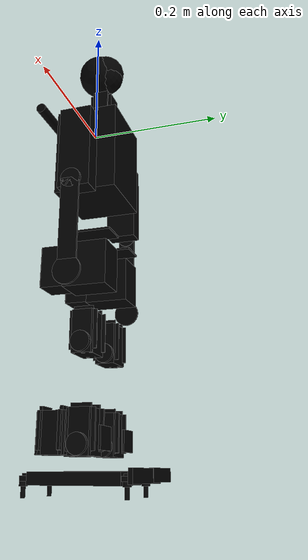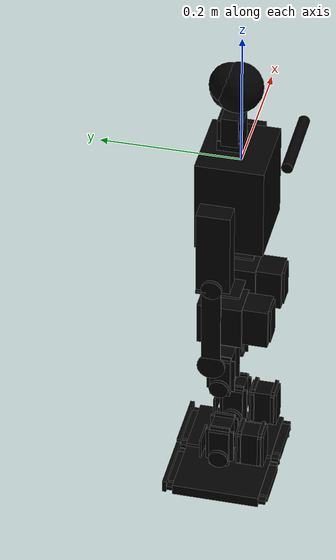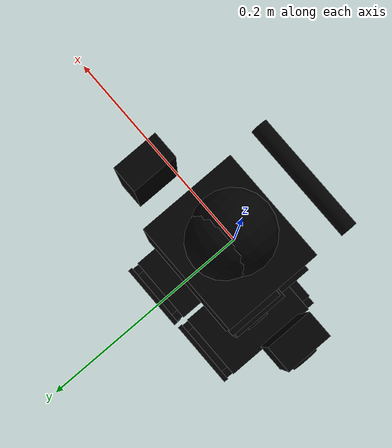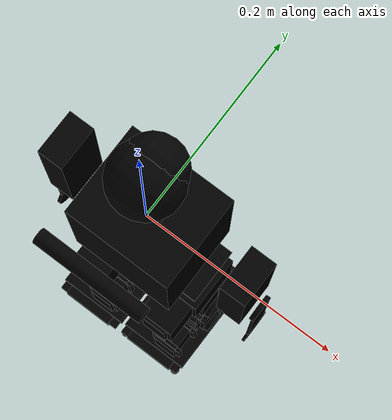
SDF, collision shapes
<sdf version='1.11'>
  <model name='human'>
    <link name='chest'>
      <inertial>
        <pose>-0.00019902280337225921 -0.00203130302736155 -0.037819464503959899 0 0 0</pose>
        <mass>1.01725518354323</mass>
        <inertia>
          <ixx>0.0031801711506863851</ixx>
          <ixy>2.3215723779200341e-07</ixy>
          <ixz>3.1962318710858549e-06</ixz>
          <iyy>0.003314632515231372</iyy>
          <iyz>-0.00032228233031600731</iyz>
          <izz>0.00064202333554569304</izz>
        </inertia>
      </inertial>
      <collision name='chest_box_collision'>
        <pose>0 0.0050000000000000001 -0.050000000000000003 0 0 0</pose>
        <geometry>
          <box>
            <size>0.1125 0.097500000000000003 0.14000000000000001</size>
          </box>
        </geometry>
      </collision>
      <collision name='chest_cylinder_collision_1'>
        <pose>0 -0.075699000000000002 0.037999999999999999 0 1.5707963267948966 0</pose>
        <geometry>
          <cylinder>
            <length>0.11459999999999999</length>
            <radius>0.0080000000000000002</radius>
          </cylinder>
        </geometry>
      </collision>
      <collision name='chest_fixed_joint_lump__neck_collision1_collision_2'>
        <pose>0 0.0134 0.051150000000000043 0 0 0</pose>
        <geometry>
          <box>
            <size>0.030200000000000001 0.0356 0.039600000000000003</size>
          </box>
        </geometry>
      </collision>
      <collision name='chest_fixed_joint_lump__neck_collision2_collision_3'>
        <pose>0 0.013427 0.053940000000000043 0 0 0</pose>
        <geometry>
          <box>
            <size>0.035499999999999997 0.024386399999999999 0.045179499999999997</size>
          </box>
        </geometry>
      </collision>
      <collision name='chest_fixed_joint_lump__neck_collision3_collision_4'>
        <pose>0 0.0134 0.030250000000000051 0 0 0</pose>
        <geometry>
          <box>
            <size>0.034200000000000001 0.035499999999999997 0.014999999999999999</size>
          </box>
        </geometry>
      </collision>
      <collision name='chest_fixed_joint_lump__head_collision1_collision_5'>
        <pose>-0.0002499984691190886 0.015306468801537991 0.1235513065115186 1.5707959999999983 -1.4912129999999999 -1.5707959999999981</pose>
        <geometry>
          <sphere>
            <radius>0.030539699999999999</radius>
          </sphere>
        </geometry>
      </collision>
      <collision name='chest_fixed_joint_lump__head_collision2_collision_6'>
        <pose>-0.00024999864647085382 0.016264169320519401 0.11676295739586889 1.5707959999999983 -1.4912129999999999 -1.5707959999999981</pose>
        <geometry>
          <sphere>
            <radius>0.028408599999999999</radius>
          </sphere>
        </geometry>
      </collision>
      <collision name='chest_fixed_joint_lump__head_collision3_collision_7'>
        <pose>-0.0002499985442047277 0.0049332325522251138 0.1202481863629407 1.5707959999999983 -1.4912129999999999 -1.5707959999999981</pose>
        <geometry>
          <sphere>
            <radius>0.0349883</radius>
          </sphere>
        </geometry>
      </collision>
      <visual name='chest_visual_visual'>
        <pose>0 0 0 -1.5707963270000003 0 0</pose>
        <geometry>
          <mesh>
            <scale>1 1 1</scale>
            <uri>meshes/chest.STL</uri>
          </mesh>
        </geometry>
      </visual>
      <visual name='chest_fixed_joint_lump__neck_visual_visual_1'>
        <pose>0 0.0134 0.02075000000000005 -1.5707963270000003 0 0</pose>
        <geometry>
          <mesh>
            <scale>1 1 1</scale>
            <uri>meshes/neck.STL</uri>
          </mesh>
        </geometry>
        <material>
          <diffuse>0 0 0 1</diffuse>
          <ambient>0 0 0 1</ambient>
        </material>
      </visual>
      <visual name='chest_fixed_joint_lump__head_visual_visual_2'>
        <pose>-0.018749999999999999 0.0134 0.064550000000000052 -3.270000019771135e-07 -1.4912130000000026 -1.5707959999999985</pose>
        <geometry>
          <mesh>
            <scale>1 1 1</scale>
            <uri>meshes/head.STL</uri>
          </mesh>
        </geometry>
        <material>
          <diffuse>0 0 0 1</diffuse>
          <ambient>0 0 0 1</ambient>
        </material>
      </visual>
    </link>
    <joint name='left_arm_upper' type='revolute'>
      <pose relative_to='chest'>-0.074700000000000003 0.0134 0 -3.1415923071795868 1.5707960010076636 8.1079225973594387e-17</pose>
      <parent>chest</parent>
      <child>left_arm</child>
      <axis>
        <xyz>0 0 -1</xyz>
        <limit>
          <lower>-3.1415926540000001</lower>
          <upper>3.1415926540000001</upper>
          <effort>7</effort>
          <velocity>20</velocity>
        </limit>
        <dynamics>
          <damping>0.036200000000000003</damping>
          <friction>0.0077999999999999996</friction>
          <spring_reference>0</spring_reference>
          <spring_stiffness>0</spring_stiffness>
        </dynamics>
      </axis>
    </joint>
    <link name='left_arm'>
      <pose relative_to='left_arm_upper'>0 0 0 0 0 0</pose>
      <inertial>
        <pose>0.080763000000000001 0.0018860000000000001 0.029108999999999999 0 0 0</pose>
        <mass>0.140880482426088</mass>
        <inertia>
          <ixx>2.0746461598375701e-05</ixx>
          <ixy>-2.8659021101734599e-11</ixy>
          <ixz>-6.7417528894394298e-06</ixz>
          <iyy>0.00012310039515784201</iyy>
          <iyz>-1.5929639449771301e-07</iyz>
          <izz>0.00011999284945507099</izz>
        </inertia>
      </inertial>
      <collision name='left_arm_collision_collision'>
        <pose>0.080500000000000002 0 0.029000000000000001 0 0 0</pose>
        <geometry>
          <box>
            <size>0.12709999999999999 0.048000000000000001 0.028000000000000001</size>
          </box>
        </geometry>
      </collision>
      <visual name='left_arm_visual_visual'>
        <pose>0 0 0 -1.5707963270000003 0 0</pose>
        <geometry>
          <mesh>
            <scale>1 1 1</scale>
            <uri>meshes/left_arm.STL</uri>
          </mesh>
        </geometry>
        <material>
          <diffuse>0 0 0 1</diffuse>
          <ambient>0 0 0 1</ambient>
        </material>
      </visual>
    </link>
    <joint name='left_arm_lower' type='revolute'>
      <pose relative_to='left_arm'>0.13600000000000001 0 0.049549999999999997 0 0 0</pose>
      <parent>left_arm</parent>
      <child>left_hand</child>
      <axis>
        <xyz>0 0 -1</xyz>
        <limit>
          <lower>-3.1415926540000001</lower>
          <upper>3.1415926540000001</upper>
          <effort>3</effort>
          <velocity>20</velocity>
        </limit>
        <dynamics>
          <damping>0.036200000000000003</damping>
          <friction>0.0077999999999999996</friction>
          <spring_reference>0</spring_reference>
          <spring_stiffness>0</spring_stiffness>
        </dynamics>
      </axis>
    </joint>
    <link name='left_hand'>
      <pose relative_to='left_arm_lower'>0 0 0 0 0 0</pose>
      <inertial>
        <pose>0.063648999999999997 0 0.0013190000000000001 0 0 0</pose>
        <mass>0.024044269196268502</mass>
        <inertia>
          <ixx>1.94691318232501e-06</ixx>
          <ixy>1.9798400242031498e-12</ixy>
          <ixz>1.70538796340321e-12</ixz>
          <iyy>4.9981652993954002e-05</iyy>
          <iyz>7.0639482370012499e-13</iyz>
          <izz>5.1889171468805399e-05</izz>
        </inertia>
      </inertial>
      <collision name='left_hand_end_collision_collision'>
        <pose>0.13500000000000001 0 0.0015 0 0 0</pose>
        <geometry>
          <cylinder>
            <length>0.0030000000000000001</length>
            <radius>0.02</radius>
          </cylinder>
        </geometry>
      </collision>
      <collision name='left_hand_base_collision_collision_1'>
        <pose>0 0 0.00050000000000000001 0 0 0</pose>
        <geometry>
          <cylinder>
            <length>0.0050000000000000001</length>
            <radius>0.0146</radius>
          </cylinder>
        </geometry>
      </collision>
      <collision name='left_hand_connection_collision_collision_2'>
        <pose>0.060122000000000002 0 0.0015 0 0 0</pose>
        <geometry>
          <box>
            <size>0.120244 0.027 0.0030000000000000001</size>
          </box>
        </geometry>
      </collision>
      <visual name='left_hand_visual_visual'>
        <pose>0 0 0 -1.5707963270000003 0 0</pose>
        <geometry>
          <mesh>
            <scale>1 1 1</scale>
            <uri>meshes/left_hand.STL</uri>
          </mesh>
        </geometry>
        <material>
          <diffuse>0 0 0 1</diffuse>
          <ambient>0 0 0 1</ambient>
        </material>
      </visual>
    </link>
    <joint name='left_hip_yaw' type='revolute'>
      <pose relative_to='chest'>-0.044999999999999998 0.0133599999999985 -0.16994999999999999 0 0 0</pose>
      <parent>chest</parent>
      <child>left_leg_yaw</child>
      <axis>
        <xyz>0 0 -1</xyz>
        <limit>
          <lower>-3.1415926540000001</lower>
          <upper>3.1415926540000001</upper>
          <effort>7</effort>
          <velocity>20</velocity>
        </limit>
        <dynamics>
          <damping>0.036200000000000003</damping>
          <friction>0.0077999999999999996</friction>
          <spring_reference>0</spring_reference>
          <spring_stiffness>0</spring_stiffness>
        </dynamics>
      </axis>
    </joint>
    <link name='left_leg_yaw'>
      <pose relative_to='left_hip_yaw'>0 0 0 0 0 0</pose>
      <inertial>
        <pose>0 0.0032850000000000002 -0.029821 0 0 0</pose>
        <mass>0.058662024462932297</mass>
        <inertia>
          <ixx>3.0496686582707501e-05</ixx>
          <ixy>-8.4677743033588304e-14</ixy>
          <ixz>8.5574380306308406e-14</ixz>
          <iyy>1.16928645977672e-05</iyy>
          <iyz>-9.4199503165967801e-08</iyz>
          <izz>3.04113434807083e-05</izz>
        </inertia>
      </inertial>
      <collision name='left_leg_yaw_collision_collision'>
        <pose>0 0.0051500000000000001 -0.022499999999999999 0 0 0</pose>
        <geometry>
          <box>
            <size>0.041000000000000002 0.063700000000000007 0.0030000000000000001</size>
          </box>
        </geometry>
      </collision>
      <visual name='left_leg_yaw_visual_visual'>
        <pose>0 0 0 -1.5707963270000003 0 0</pose>
        <geometry>
          <mesh>
            <scale>1 1 1</scale>
            <uri>meshes/left_leg_yaw.STL</uri>
          </mesh>
        </geometry>
        <material>
          <diffuse>0 0 0 1</diffuse>
          <ambient>0 0 0 1</ambient>
        </material>
      </visual>
    </link>
    <joint name='left_hip_roll' type='revolute'>
      <pose relative_to='left_leg_yaw'>0 -0.0292 -0.055 0 0 0</pose>
      <parent>left_leg_yaw</parent>
      <child>left_leg_roll</child>
      <axis>
        <xyz>0 1 0</xyz>
        <limit>
          <lower>-3.1415926540000001</lower>
          <upper>3.1415926540000001</upper>
          <effort>7</effort>
          <velocity>20</velocity>
        </limit>
        <dynamics>
          <damping>0.036200000000000003</damping>
          <friction>0.0077999999999999996</friction>
          <spring_reference>0</spring_reference>
          <spring_stiffness>0</spring_stiffness>
        </dynamics>
      </axis>
    </joint>
    <link name='left_leg_roll'>
      <pose relative_to='left_hip_roll'>0 0 0 0 0 0</pose>
      <inertial>
        <pose>2.5000000000000001e-05 0.010978 -0.014083999999999999 0 0 0</pose>
        <mass>0.17675216665704899</mass>
        <inertia>
          <ixx>6.1790335519862398e-05</ixx>
          <ixy>-9.41308133856575e-10</ixy>
          <ixz>-2.1169089800936899e-07</ixz>
          <iyy>6.5889939337192494e-05</iyy>
          <iyz>-2.14817110544029e-07</iyz>
          <izz>3.9028076120466002e-05</izz>
        </inertia>
      </inertial>
      <collision name='left_leg_roll_upper_collision_collision'>
        <pose>0 0.03065 -0.018117000000000001 0 0 0</pose>
        <geometry>
          <box>
            <size>0.050200000000000002 0.064299999999999996 0.065255199999999999</size>
          </box>
        </geometry>
      </collision>
      <collision name='left_leg_roll_lower_collision_collision_1'>
        <pose>0 -0.039750000000000001 -0.014838 0 0 0</pose>
        <geometry>
          <box>
            <size>0.028996999999999998 0.0035000000000000001 0.055392799999999999</size>
          </box>
        </geometry>
      </collision>
      <collision name='left_leg_roll_down_collision_collision_2'>
        <pose>1.4e-05 -0.019 -0.01755 0 0 0</pose>
        <geometry>
          <box>
            <size>0.040388399999999998 0.037999999999999999 0.061100599999999998</size>
          </box>
        </geometry>
      </collision>
      <visual name='left_leg_roll_visual_visual'>
        <pose>0 0 0 -1.5707963270000003 0 0</pose>
        <geometry>
          <mesh>
            <scale>1 1 1</scale>
            <uri>meshes/left_leg_roll.STL</uri>
          </mesh>
        </geometry>
        <material>
          <diffuse>0 0 0 1</diffuse>
          <ambient>0 0 0 1</ambient>
        </material>
      </visual>
    </link>
    <joint name='left_hip_pitch' type='revolute'>
      <pose relative_to='left_leg_roll'>-0.028999694999999999 0.0292 0.000132953 -0.34059799999999818 1.5659320000000612 2.8009909999999976</pose>
      <parent>left_leg_roll</parent>
      <child>left_leg_pitch</child>
      <axis>
        <xyz>0 0 -1</xyz>
        <limit>
          <lower>-3.1415926540000001</lower>
          <upper>3.1415926540000001</upper>
          <effort>10</effort>
          <velocity>20</velocity>
        </limit>
        <dynamics>
          <damping>0.041399999999999999</damping>
          <friction>0.1179</friction>
          <spring_reference>0</spring_reference>
          <spring_stiffness>0</spring_stiffness>
        </dynamics>
      </axis>
    </joint>
    <link name='left_leg_pitch'>
      <pose relative_to='left_hip_pitch'>0 0 0 0 0 0</pose>
      <inertial>
        <pose>0.037596999999999998 0 -0.027982 0 0 0</pose>
        <mass>0.027887725075667901</mass>
        <inertia>
          <ixx>2.41537468742227e-06</ixx>
          <ixy>3.2274965794789498e-14</ixy>
          <ixz>4.7964487075471796e-12</ixz>
          <iyy>1.14633756275734e-05</iyy>
          <iyz>7.7934947477887403e-15</iyz>
          <izz>1.3716039319153201e-05</izz>
        </inertia>
      </inertial>
      <collision name='left_leg_pitch_big_collision_collision'>
        <pose>0.11475 0 -0.028992 0 0 0</pose>
        <geometry>
          <box>
            <size>0.059499999999999997 0.029000000000000001 0.045984799999999999</size>
          </box>
        </geometry>
      </collision>
      <collision name='left_leg_pitch_p_one0_collision_collision_1'>
        <pose>0.11194999999999999 0 -0.012749999999999999 0 0 0</pose>
        <geometry>
          <box>
            <size>0.065100000000000005 0.029000000000000001 0.0015</size>
          </box>
        </geometry>
      </collision>
      <collision name='left_leg_pitch_p_one1_collision_collision_2'>
        <pose>0.11194999999999999 0 -0.012749999999999999 0 0 0</pose>
        <geometry>
          <box>
            <size>0.053900000000000003 0.0402 0.0015</size>
          </box>
        </geometry>
      </collision>
      <collision name='left_leg_pitch_p_two0_collision_collision_3'>
        <pose>0.11194999999999999 0 -0.045249999999999999 0 0 0</pose>
        <geometry>
          <box>
            <size>0.065100000000000005 0.029000000000000001 0.0015</size>
          </box>
        </geometry>
      </collision>
      <collision name='left_leg_pitch_p_two1_collision_collision_4'>
        <pose>0.11194999999999999 0 -0.045249999999999999 0 0 0</pose>
        <geometry>
          <box>
            <size>0.053900000000000003 0.0402 0.0015</size>
          </box>
        </geometry>
      </collision>
      <visual name='left_leg_pitch_visual_visual'>
        <pose>0 0 0 -1.5707963270000003 0 0</pose>
        <geometry>
          <mesh>
            <scale>1 1 1</scale>
            <uri>meshes/left_leg_pitch.STL</uri>
          </mesh>
        </geometry>
        <material>
          <diffuse>0 0 0 1</diffuse>
          <ambient>0 0 0 1</ambient>
        </material>
      </visual>
    </link>
    <joint name='left_knee' type='revolute'>
      <pose relative_to='left_leg_pitch'>0.13002367748412599 -0.000211229839968 -0.0049039448874059997 0 0 0</pose>
      <parent>left_leg_pitch</parent>
      <child>left_leg_knee</child>
      <axis>
        <xyz>0 0 1</xyz>
        <limit>
          <lower>-3.1415926540000001</lower>
          <upper>3.1415926540000001</upper>
          <effort>10</effort>
          <velocity>20</velocity>
        </limit>
        <dynamics>
          <damping>0.034700000000000002</damping>
          <friction>0.0843</friction>
          <spring_reference>0</spring_reference>
          <spring_stiffness>0</spring_stiffness>
        </dynamics>
      </axis>
    </joint>
    <link name='left_leg_knee'>
      <pose relative_to='left_knee'>0 0 0 0 0 0</pose>
      <inertial>
        <pose>0.084360000000000004 0 -0.024128 0 0 0</pose>
        <mass>0.0328192125267944</mass>
        <inertia>
          <ixx>1.9489049933254499e-06</ixx>
          <ixy>2.35500388345378e-20</ixy>
          <ixz>-4.79645500496334e-12</ixz>
          <iyy>4.3073341622455502e-05</iyy>
          <iyz>9.3300803217153103e-22</iyz>
          <izz>4.4968042537653101e-05</izz>
        </inertia>
      </inertial>
      <collision name='left_leg_knee_collision0_collision'>
        <pose>0 0 -0.049750000000000003 0 0 0</pose>
        <geometry>
          <cylinder>
            <length>0.0054999999999999997</length>
            <radius>0.014</radius>
          </cylinder>
        </geometry>
      </collision>
      <collision name='left_leg_knee_collision1_collision_1'>
        <pose>0 0 0.0030000000000000001 0 0 0</pose>
        <geometry>
          <cylinder>
            <length>0.0054999999999999997</length>
            <radius>0.014</radius>
          </cylinder>
        </geometry>
      </collision>
      <collision name='left_leg_knee_collision2_collision_2'>
        <pose>0.13036 0 -0.049750000000000003 0 0 0</pose>
        <geometry>
          <cylinder>
            <length>0.0054999999999999997</length>
            <radius>0.014</radius>
          </cylinder>
        </geometry>
      </collision>
      <collision name='left_leg_knee_collision3_collision_3'>
        <pose>0.13036 0 0.0030000000000000001 0 0 0</pose>
        <geometry>
          <cylinder>
            <length>0.0054999999999999997</length>
            <radius>0.014</radius>
          </cylinder>
        </geometry>
      </collision>
      <visual name='left_leg_knee_visual_visual'>
        <pose>0 0 0 -1.5707963270000003 0 0</pose>
        <geometry>
          <mesh>
            <scale>1 1 1</scale>
            <uri>meshes/left_leg_knee.STL</uri>
          </mesh>
        </geometry>
        <material>
          <diffuse>0 0 0 1</diffuse>
          <ambient>0 0 0 1</ambient>
        </material>
      </visual>
    </link>
    <joint name='left_ankle_pitch' type='revolute'>
      <pose relative_to='left_leg_knee'>0.12999846217997499 -0.000211229839968 0.00059599731123800002 -0.17622265358979133 1.5614826535898316 2.9669936535897934</pose>
      <parent>left_leg_knee</parent>
      <child>left_leg_ankle</child>
      <axis>
        <xyz>1 0 0</xyz>
        <limit>
          <lower>-3.1415926540000001</lower>
          <upper>3.1415926540000001</upper>
          <effort>10</effort>
          <velocity>20</velocity>
        </limit>
        <dynamics>
          <damping>0.036200000000000003</damping>
          <friction>0.0077999999999999996</friction>
          <spring_reference>0</spring_reference>
          <spring_stiffness>0</spring_stiffness>
        </dynamics>
      </axis>
    </joint>
    <link name='left_leg_ankle'>
      <pose relative_to='left_ankle_pitch'>0 0 0 0 0 0</pose>
      <inertial>
        <pose>0.023591000000000001 -0.016018000000000001 0.014279999999999999 0 0 0</pose>
        <mass>0.173948205448793</mass>
        <inertia>
          <ixx>6.1525563546113303e-05</ixx>
          <ixy>-4.3529887410332497e-11</ixy>
          <ixz>1.07316479776985e-07</ixz>
          <iyy>6.5767469559665899e-05</iyy>
          <iyz>-1.9005632960375801e-07</iyz>
          <izz>3.8828440030109099e-05</izz>
        </inertia>
      </inertial>
      <collision name='left_leg_ankle_small_collision_collision'>
        <pose>0.023508000000000001 -0.043499999999999997 0.014751999999999999 0 0 0</pose>
        <geometry>
          <box>
            <size>0.028984800000000002 0.041000000000000002 0.055496200000000002</size>
          </box>
        </geometry>
      </collision>
      <collision name='left_leg_ankle_small11_collision_collision_1'>
        <pose>0.0235 -0.058250000000000003 0.01755 0 0 0</pose>
        <geometry>
          <box>
            <size>0.029000000000000001 0.0044999999999999997 0.061100000000000002</size>
          </box>
        </geometry>
      </collision>
      <collision name='left_leg_ankle_small12_collision_collision_2'>
        <pose>0.0235 -0.058250000000000003 0.01755 0 0 0</pose>
        <geometry>
          <box>
            <size>0.0402 0.0044999999999999997 0.0499</size>
          </box>
        </geometry>
      </collision>
      <collision name='left_leg_ankle_small21_collision_collision_3'>
        <pose>0.0235 -0.028739000000000001 0.01755 0 0 0</pose>
        <geometry>
          <box>
            <size>0.029000000000000001 0.0044999999999999997 0.061100000000000002</size>
          </box>
        </geometry>
      </collision>
      <collision name='left_leg_ankle_small22_collision_collision_4'>
        <pose>0.0235 -0.028739000000000001 0.01755 0 0 0</pose>
        <geometry>
          <box>
            <size>0.0402 0.0044999999999999997 0.0499</size>
          </box>
        </geometry>
      </collision>
      <collision name='left_leg_ankle_big_collision_collision_5'>
        <pose>0.0235 0 0.01525 0 0 0</pose>
        <geometry>
          <box>
            <size>0.045999999999999999 0.029000000000000001 0.059499999999999997</size>
          </box>
        </geometry>
      </collision>
      <collision name='left_leg_ankle_big11_collision_collision_6'>
        <pose>0.03875 0 0.01805 0 0 0</pose>
        <geometry>
          <box>
            <size>0.0035000000000000001 0.029000000000000001 0.065100000000000005</size>
          </box>
        </geometry>
      </collision>
      <collision name='left_leg_ankle_big12_collision_collision_7'>
        <pose>0.03875 0 0.01805 0 0 0</pose>
        <geometry>
          <box>
            <size>0.0035000000000000001 0.0402 0.053900000000000003</size>
          </box>
        </geometry>
      </collision>
      <collision name='left_leg_ankle_big21_collision_collision_8'>
        <pose>0.0080000000000000002 0 0.01805 0 0 0</pose>
        <geometry>
          <box>
            <size>0.0030000000000000001 0.029000000000000001 0.065100000000000005</size>
          </box>
        </geometry>
      </collision>
      <collision name='left_leg_ankle_big22_collision_collision_9'>
        <pose>0.0080000000000000002 0 0.01805 0 0 0</pose>
        <geometry>
          <box>
            <size>0.0035000000000000001 0.0402 0.053900000000000003</size>
          </box>
        </geometry>
      </collision>
      <collision name='left_leg_ankle_upper_collision_collision_10'>
        <pose>0.0235 0.02785 0.0070000000000000001 0 0 0</pose>
        <geometry>
          <box>
            <size>0.039 0.0027000000000000001 0.029999999999999999</size>
          </box>
        </geometry>
      </collision>
      <visual name='left_leg_ankle_visual_visual'>
        <pose>0 0 0 -1.5707963270000003 0 0</pose>
        <geometry>
          <mesh>
            <scale>1 1 1</scale>
            <uri>meshes/left_leg_ankle.STL</uri>
          </mesh>
        </geometry>
        <material>
          <diffuse>0 0 0 1</diffuse>
          <ambient>0 0 0 1</ambient>
        </material>
      </visual>
    </link>
    <joint name='left_ankle_roll' type='revolute'>
      <pose relative_to='left_leg_ankle'>0.023387000000000002 -0.069538000000000003 -0.000113445 0 0 0</pose>
      <parent>left_leg_ankle</parent>
      <child>left_foot</child>
      <axis>
        <xyz>0 -1 0</xyz>
        <limit>
          <lower>-3.1415926540000001</lower>
          <upper>3.1415926540000001</upper>
          <effort>7</effort>
          <velocity>20</velocity>
        </limit>
        <dynamics>
          <damping>0.036200000000000003</damping>
          <friction>0.0077999999999999996</friction>
          <spring_reference>0</spring_reference>
          <spring_stiffness>0</spring_stiffness>
        </dynamics>
      </axis>
    </joint>
    <link name='left_foot'>
      <pose relative_to='left_ankle_roll'>0 0 0 0 0 0</pose>
      <inertial>
        <pose>-0.012987 0.068288000000000001 -0.035867999999999997 0 0 0</pose>
        <mass>0.144176668751163</mass>
        <inertia>
          <ixx>0.00014149565462157499</ixx>
          <ixy>-1.52740202739877e-09</ixy>
          <ixz>1.9349728888557201e-07</ixz>
          <iyy>5.0645258641957197e-05</iyy>
          <iyz>-3.3396462913510601e-07</iyz>
          <izz>0.000183700741709755</izz>
        </inertia>
      </inertial>
      <collision name='left_foot_box1_collision_collision'>
        <pose>-0.016188000000000001 0.066000000000000003 -0.040925999999999997 0 0 0</pose>
        <geometry>
          <box>
            <size>0.089999999999999997 0.126 0.016</size>
          </box>
        </geometry>
      </collision>
      <collision name='left_foot_box2_collision_collision_1'>
        <pose>-0.016211 0.066022999999999998 -0.040925999999999997 0 0 0</pose>
        <geometry>
          <box>
            <size>0.065954399999999996 0.149954 0.012</size>
          </box>
        </geometry>
      </collision>
      <collision name='left_foot_box3_collision_collision_2'>
        <pose>-0.016188000000000001 0.066000000000000003 -0.040925999999999997 0 0 0</pose>
        <geometry>
          <box>
            <size>0.086999999999999994 0.14699999999999999 0.0060000000000000001</size>
          </box>
        </geometry>
      </collision>
      <collision name='left_foot_box4_collision_collision_3'>
        <pose>-0.016171999999999999 0.14108599999999999 -0.037588999999999997 0 0 0</pose>
        <geometry>
          <box>
            <size>0.089999999999999997 0.0058276400000000003 0.018674400000000001</size>
          </box>
        </geometry>
      </collision>
      <visual name='left_foot_visual_visual'>
        <pose>0 0 0 -1.5707963270000003 0 0</pose>
        <geometry>
          <mesh>
            <scale>1 1 1</scale>
            <uri>meshes/left_foot.STL</uri>
          </mesh>
        </geometry>
        <material>
          <diffuse>0 0 0 1</diffuse>
          <ambient>0 0 0 1</ambient>
        </material>
      </visual>
    </link>
    <joint name='right_arm_upper' type='revolute'>
      <pose relative_to='chest'>0.074700000000000003 0.0134 0 0 1.5707959999869179 0</pose>
      <parent>chest</parent>
      <child>right_arm</child>
      <axis>
        <xyz>0 0 1</xyz>
        <limit>
          <lower>-3.1415926540000001</lower>
          <upper>3.1415926540000001</upper>
          <effort>7</effort>
          <velocity>20</velocity>
        </limit>
        <dynamics>
          <damping>0.036200000000000003</damping>
          <friction>0.0077999999999999996</friction>
          <spring_reference>0</spring_reference>
          <spring_stiffness>0</spring_stiffness>
        </dynamics>
      </axis>
    </joint>
    <link name='right_arm'>
      <pose relative_to='right_arm_upper'>0 0 0 0 0 0</pose>
      <inertial>
        <pose>0.080811999999999995 -0.0018710000000000001 0.029107999999999998 0 0 0</pose>
        <mass>0.140880482426088</mass>
        <inertia>
          <ixx>2.0746461598375701e-05</ixx>
          <ixy>3.0340088781543498e-07</ixy>
          <ixz>-6.7417528894395102e-06</ixz>
          <iyy>0.00012310039515784201</iyy>
          <iyz>1.5929818113849301e-07</iyz>
          <izz>0.00011999284945507099</izz>
        </inertia>
      </inertial>
      <collision name='right_arm_collision_collision'>
        <pose>0.080500000000000002 0 0.029000000000000001 0 0 0</pose>
        <geometry>
          <box>
            <size>0.12709999999999999 0.048000000000000001 0.028000000000000001</size>
          </box>
        </geometry>
      </collision>
      <visual name='right_arm_visual_visual'>
        <pose>0 0 0 -1.5707963270000003 0 0</pose>
        <geometry>
          <mesh>
            <scale>1 1 1</scale>
            <uri>meshes/right_arm.STL</uri>
          </mesh>
        </geometry>
        <material>
          <diffuse>0 0 0 1</diffuse>
          <ambient>0 0 0 1</ambient>
        </material>
      </visual>
    </link>
    <joint name='right_arm_lower' type='revolute'>
      <pose relative_to='right_arm'>0.13600000000000001 0 0.052549999999999999 0 0 0</pose>
      <parent>right_arm</parent>
      <child>right_hand</child>
      <axis>
        <xyz>0 0 1</xyz>
        <limit>
          <lower>-3.1415926540000001</lower>
          <upper>3.1415926540000001</upper>
          <effort>3</effort>
          <velocity>20</velocity>
        </limit>
        <dynamics>
          <damping>0.036200000000000003</damping>
          <friction>0.0077999999999999996</friction>
          <spring_reference>0</spring_reference>
          <spring_stiffness>0</spring_stiffness>
        </dynamics>
      </axis>
    </joint>
    <link name='right_hand'>
      <pose relative_to='right_arm_lower'>0 0 0 0 0 0</pose>
      <inertial>
        <pose>0.063648999999999997 0 -0.001681 0 0 0</pose>
        <mass>0.024044269196268502</mass>
        <inertia>
          <ixx>1.94691318232501e-06</ixx>
          <ixy>-1.9798400205047599e-12</ixy>
          <ixz>1.70538796039851e-12</ixz>
          <iyy>4.9981652993954097e-05</iyy>
          <iyz>-7.0639482380154195e-13</iyz>
          <izz>5.1889171468805501e-05</izz>
        </inertia>
      </inertial>
      <collision name='right_hand_end_collision_collision'>
        <pose>0.13500000000000001 0 -0.0015 0 0 0</pose>
        <geometry>
          <cylinder>
            <length>0.0030000000000000001</length>
            <radius>0.02</radius>
          </cylinder>
        </geometry>
      </collision>
      <collision name='right_hand_base_collision_collision_1'>
        <pose>0 0 -0.0025000000000000001 0 0 0</pose>
        <geometry>
          <cylinder>
            <length>0.0050000000000000001</length>
            <radius>0.0146</radius>
          </cylinder>
        </geometry>
      </collision>
      <collision name='right_hand_connection_collision_collision_2'>
        <pose>0.060122000000000002 0 -0.0015 0 0 0</pose>
        <geometry>
          <box>
            <size>0.120244 0.027 0.0030000000000000001</size>
          </box>
        </geometry>
      </collision>
      <visual name='right_hand_visual_visual'>
        <pose>0 0 0 -1.5707963270000003 0 0</pose>
        <geometry>
          <mesh>
            <scale>1 1 1</scale>
            <uri>meshes/right_hand.STL</uri>
          </mesh>
        </geometry>
        <material>
          <diffuse>0 0 0 1</diffuse>
          <ambient>0 0 0 1</ambient>
        </material>
      </visual>
    </link>
    <joint name='right_hip_yaw' type='revolute'>
      <pose relative_to='chest'>0.044999999999999998 0.01336 -0.16994999999999999 0 0 0</pose>
      <parent>chest</parent>
      <child>right_leg_yaw</child>
      <axis>
        <xyz>0 0 -1</xyz>
        <limit>
          <lower>-3.1415926540000001</lower>
          <upper>3.1415926540000001</upper>
          <effort>7</effort>
          <velocity>20</velocity>
        </limit>
        <dynamics>
          <damping>0.036200000000000003</damping>
          <friction>0.0077999999999999996</friction>
          <spring_reference>0</spring_reference>
          <spring_stiffness>0</spring_stiffness>
        </dynamics>
      </axis>
    </joint>
    <link name='right_leg_yaw'>
      <pose relative_to='right_hip_yaw'>0 0 0 0 0 0</pose>
      <inertial>
        <pose>0 0.0032850000000000002 -0.029821 0 0 0</pose>
        <mass>0.0586620244629322</mass>
        <inertia>
          <ixx>3.0496686583123601e-05</ixx>
          <ixy>-3.16154434574983e-14</ixy>
          <ixz>-1.34169348176914e-13</ixz>
          <iyy>1.16928645977672e-05</iyy>
          <iyz>-9.4199503115753094e-08</iyz>
          <izz>3.0411343480292098e-05</izz>
        </inertia>
      </inertial>
      <collision name='right_leg_yaw_collision_collision'>
        <pose>0 0.0051500000000000001 -0.022499999999999999 0 0 0</pose>
        <geometry>
          <box>
            <size>0.041000000000000002 0.063700000000000007 0.0030000000000000001</size>
          </box>
        </geometry>
      </collision>
      <visual name='right_leg_yaw_visual_visual'>
        <pose>0 0 0 -1.5707963270000003 0 0</pose>
        <geometry>
          <mesh>
            <scale>1 1 1</scale>
            <uri>meshes/right_leg_yaw.STL</uri>
          </mesh>
        </geometry>
        <material>
          <diffuse>0 0 0 1</diffuse>
          <ambient>0 0 0 1</ambient>
        </material>
      </visual>
    </link>
    <joint name='right_hip_roll' type='revolute'>
      <pose relative_to='right_leg_yaw'>0 -0.0292 -0.055 0 -0.0064780000000000003 0</pose>
      <parent>right_leg_yaw</parent>
      <child>right_leg_roll</child>
      <axis>
        <xyz>0 -1 0</xyz>
        <limit>
          <lower>-3.1415926540000001</lower>
          <upper>3.1415926540000001</upper>
          <effort>7</effort>
          <velocity>20</velocity>
        </limit>
        <dynamics>
          <damping>0.036200000000000003</damping>
          <friction>0.0077999999999999996</friction>
          <spring_reference>0</spring_reference>
          <spring_stiffness>0</spring_stiffness>
        </dynamics>
      </axis>
    </joint>
    <link name='right_leg_roll'>
      <pose relative_to='right_hip_roll'>0 0 0 0 0 0</pose>
      <inertial>
        <pose>9.0000000000000006e-05 0.010978 -0.014083999999999999 0 0 0</pose>
        <mass>0.176752167034151</mass>
        <inertia>
          <ixx>6.1791798147460997e-05</ixx>
          <ixy>4.3532300340763102e-11</ixy>
          <ixz>-1.07327270209975e-07</ixz>
          <iyy>6.5889939430164294e-05</iyy>
          <iyz>-2.14819182994814e-07</iyz>
          <izz>3.9026613600567697e-05</izz>
        </inertia>
      </inertial>
      <collision name='right_leg_roll_upper_collision_collision'>
        <pose>0 0.03065 -0.018117000000000001 0 0 0</pose>
        <geometry>
          <box>
            <size>0.050200000000000002 0.064299999999999996 0.065255199999999999</size>
          </box>
        </geometry>
      </collision>
      <collision name='right_leg_roll_lower_collision_collision_1'>
        <pose>0 -0.039750000000000001 -0.014838 0 0 0</pose>
        <geometry>
          <box>
            <size>0.028996999999999998 0.0035000000000000001 0.055392799999999999</size>
          </box>
        </geometry>
      </collision>
      <collision name='right_leg_roll_down_collision_collision_2'>
        <pose>1.4e-05 -0.019 -0.01755 0 0 0</pose>
        <geometry>
          <box>
            <size>0.040388399999999998 0.037999999999999999 0.061100599999999998</size>
          </box>
        </geometry>
      </collision>
      <visual name='right_leg_roll_visual_visual'>
        <pose>0 0 0 -1.5707963270000003 0 0</pose>
        <geometry>
          <mesh>
            <scale>1 1 1</scale>
            <uri>meshes/right_leg_roll.STL</uri>
          </mesh>
        </geometry>
        <material>
          <diffuse>0 0 0 1</diffuse>
          <ambient>0 0 0 1</ambient>
        </material>
      </visual>
    </link>
    <joint name='right_hip_pitch' type='revolute'>
      <pose relative_to='right_leg_roll'>0.029000000000000001 0.0292 0 1.5707799999999754 1.5670300000001207 1.5707999999999536</pose>
      <parent>right_leg_roll</parent>
      <child>right_leg_pitch</child>
      <axis>
        <xyz>0 0 1</xyz>
        <limit>
          <lower>-3.1415926540000001</lower>
          <upper>3.1415926540000001</upper>
          <effort>10</effort>
          <velocity>20</velocity>
        </limit>
        <dynamics>
          <damping>0.041399999999999999</damping>
          <friction>0.1179</friction>
          <spring_reference>0</spring_reference>
          <spring_stiffness>0</spring_stiffness>
        </dynamics>
      </axis>
    </joint>
    <link name='right_leg_pitch'>
      <pose relative_to='right_hip_pitch'>0 0 0 0 0 0</pose>
      <inertial>
        <pose>0.037596999999999998 0 -0.030018 0 0 0</pose>
        <mass>0.027887725075667901</mass>
        <inertia>
          <ixx>2.4153746871926199e-06</ixx>
          <ixy>-7.4854894278663796e-14</ixy>
          <ixz>-4.7964209833556204e-12</ixz>
          <iyy>1.14633756278031e-05</iyy>
          <iyz>1.8075310725767399e-14</iyz>
          <izz>1.3716039319153301e-05</izz>
        </inertia>
      </inertial>
      <collision name='right_leg_pitch_big_collision_collision'>
        <pose>0.11475 0 -0.028992 0 0 0</pose>
        <geometry>
          <box>
            <size>0.059499999999999997 0.029000000000000001 0.045984799999999999</size>
          </box>
        </geometry>
      </collision>
      <collision name='right_leg_pitch_p_one0_collision_collision_1'>
        <pose>0.11194999999999999 0 -0.012749999999999999 0 0 0</pose>
        <geometry>
          <box>
            <size>0.065100000000000005 0.029000000000000001 0.0015</size>
          </box>
        </geometry>
      </collision>
      <collision name='right_leg_pitch_p_one1_collision_collision_2'>
        <pose>0.11194999999999999 0 -0.012749999999999999 0 0 0</pose>
        <geometry>
          <box>
            <size>0.053900000000000003 0.0402 0.0015</size>
          </box>
        </geometry>
      </collision>
      <collision name='right_leg_pitch_p_two0_collision_collision_3'>
        <pose>0.11194999999999999 0 -0.045249999999999999 0 0 0</pose>
        <geometry>
          <box>
            <size>0.065100000000000005 0.029000000000000001 0.0015</size>
          </box>
        </geometry>
      </collision>
      <collision name='right_leg_pitch_p_two1_collision_collision_4'>
        <pose>0.11194999999999999 0 -0.045249999999999999 0 0 0</pose>
        <geometry>
          <box>
            <size>0.053900000000000003 0.0402 0.0015</size>
          </box>
        </geometry>
      </collision>
      <visual name='right_leg_pitch_visual_visual'>
        <pose>0 0 0 -1.5707963270000003 0 0</pose>
        <geometry>
          <mesh>
            <scale>1 1 1</scale>
            <uri>meshes/right_leg_pitch.STL</uri>
          </mesh>
        </geometry>
        <material>
          <diffuse>0 0 0 1</diffuse>
          <ambient>0 0 0 1</ambient>
        </material>
      </visual>
    </link>
    <joint name='right_knee' type='revolute'>
      <pose relative_to='right_leg_pitch'>0.130031979223655 0.00048990148211499999 -0.0046577221596699999 0 0 0</pose>
      <parent>right_leg_pitch</parent>
      <child>right_leg_knee</child>
      <axis>
        <xyz>-1.8970996919654559e-17 0 -1</xyz>
        <limit>
          <lower>-3.1415926540000001</lower>
          <upper>3.1415926540000001</upper>
          <effort>10</effort>
          <velocity>20</velocity>
        </limit>
        <dynamics>
          <damping>0.036200000000000003</damping>
          <friction>0.0077999999999999996</friction>
          <spring_reference>0</spring_reference>
          <spring_stiffness>0</spring_stiffness>
        </dynamics>
      </axis>
    </joint>
    <link name='right_leg_knee'>
      <pose relative_to='right_knee'>0 0 0 0 0 0</pose>
      <inertial>
        <pose>0.084360000000000004 0 -0.022872 0 0 0</pose>
        <mass>0.0328192125267944</mass>
        <inertia>
          <ixx>1.9489049933254499e-06</ixx>
          <ixy>-1.4998438866811501e-20</ixy>
          <ixz>4.7964550293966002e-12</ixz>
          <iyy>4.3073341622455502e-05</iyy>
          <iyz>4.6518569698450903e-22</iyz>
          <izz>4.4968042537653101e-05</izz>
        </inertia>
      </inertial>
      <collision name='right_leg_knee_collision0_collision'>
        <pose>0 0 -0.049750000000000003 0 0 0</pose>
        <geometry>
          <cylinder>
            <length>0.0054999999999999997</length>
            <radius>0.014</radius>
          </cylinder>
        </geometry>
      </collision>
      <collision name='right_leg_knee_collision1_collision_1'>
        <pose>0 0 0.0030000000000000001 0 0 0</pose>
        <geometry>
          <cylinder>
            <length>0.0054999999999999997</length>
            <radius>0.014</radius>
          </cylinder>
        </geometry>
      </collision>
      <collision name='right_leg_knee_collision2_collision_2'>
        <pose>0.13036 0 -0.049750000000000003 0 0 0</pose>
        <geometry>
          <cylinder>
            <length>0.0054999999999999997</length>
            <radius>0.014</radius>
          </cylinder>
        </geometry>
      </collision>
      <collision name='right_leg_knee_collision3_collision_3'>
        <pose>0.13036 0 0.0030000000000000001 0 0 0</pose>
        <geometry>
          <cylinder>
            <length>0.0054999999999999997</length>
            <radius>0.014</radius>
          </cylinder>
        </geometry>
      </collision>
      <visual name='right_leg_knee_visual_visual'>
        <pose>0 0 0 -1.5707963270000003 0 0</pose>
        <geometry>
          <mesh>
            <scale>1 1 1</scale>
            <uri>meshes/right_leg_knee.STL</uri>
          </mesh>
        </geometry>
        <material>
          <diffuse>0 0 0 1</diffuse>
          <ambient>0 0 0 1</ambient>
        </material>
      </visual>
    </link>
    <joint name='right_ankle_pitch' type='revolute'>
      <pose relative_to='right_leg_knee'>0.12997626654429101 0.00048990148211499999 0.0039420973789790004 1.5671599999998351 -1.568380000000182 -1.5709099999998204</pose>
      <parent>right_leg_knee</parent>
      <child>right_leg_ankle</child>
      <axis>
        <xyz>1 0 0</xyz>
        <limit>
          <lower>-3.1415926540000001</lower>
          <upper>3.1415926540000001</upper>
          <effort>10</effort>
          <velocity>20</velocity>
        </limit>
        <dynamics>
          <damping>0.036200000000000003</damping>
          <friction>0.0077999999999999996</friction>
          <spring_reference>0</spring_reference>
          <spring_stiffness>0</spring_stiffness>
        </dynamics>
      </axis>
    </joint>
    <link name='right_leg_ankle'>
      <pose relative_to='right_ankle_pitch'>0 0 0 0 0 0</pose>
      <inertial>
        <pose>-0.026509000000000001 -0.016018000000000001 0.014279999999999999 0 0 0</pose>
        <mass>0.17394820501059499</mass>
        <inertia>
          <ixx>6.1525563468979203e-05</ixx>
          <ixy>-4.3542375080641399e-11</ixy>
          <ixz>1.0731643525882001e-07</ixz>
          <iyy>6.5767469449289794e-05</iyy>
          <iyz>-1.90056299790816e-07</iyz>
          <izz>3.8828439931667398e-05</izz>
        </inertia>
      </inertial>
      <collision name='right_leg_ankle_small_collision_collision'>
        <pose>-0.026608 -0.043499999999999997 0.014751999999999999 0 0 0</pose>
        <geometry>
          <box>
            <size>0.028984800000000002 0.041000000000000002 0.055496200000000002</size>
          </box>
        </geometry>
      </collision>
      <collision name='right_leg_ankle_small11_collision_collision_1'>
        <pose>-0.026599999999999999 -0.058250000000000003 0.01755 0 0 0</pose>
        <geometry>
          <box>
            <size>0.029000000000000001 0.0044999999999999997 0.061100000000000002</size>
          </box>
        </geometry>
      </collision>
      <collision name='right_leg_ankle_small12_collision_collision_2'>
        <pose>-0.026599999999999999 -0.058250000000000003 0.01755 0 0 0</pose>
        <geometry>
          <box>
            <size>0.0402 0.0044999999999999997 0.0499</size>
          </box>
        </geometry>
      </collision>
      <collision name='right_leg_ankle_small21_collision_collision_3'>
        <pose>-0.026599999999999999 -0.028739000000000001 0.01755 0 0 0</pose>
        <geometry>
          <box>
            <size>0.029000000000000001 0.0044999999999999997 0.061100000000000002</size>
          </box>
        </geometry>
      </collision>
      <collision name='right_leg_ankle_small22_collision_collision_4'>
        <pose>-0.026599999999999999 -0.028739000000000001 0.01755 0 0 0</pose>
        <geometry>
          <box>
            <size>0.0402 0.0044999999999999997 0.0499</size>
          </box>
        </geometry>
      </collision>
      <collision name='right_leg_ankle_big_collision_collision_5'>
        <pose>-0.026599999999999999 0 0.01525 0 0 0</pose>
        <geometry>
          <box>
            <size>0.045999999999999999 0.029000000000000001 0.059499999999999997</size>
          </box>
        </geometry>
      </collision>
      <collision name='right_leg_ankle_big11_collision_collision_6'>
        <pose>-0.041849999999999998 0 0.01805 0 0 0</pose>
        <geometry>
          <box>
            <size>0.0035000000000000001 0.029000000000000001 0.065100000000000005</size>
          </box>
        </geometry>
      </collision>
      <collision name='right_leg_ankle_big12_collision_collision_7'>
        <pose>-0.041849999999999998 0 0.01805 0 0 0</pose>
        <geometry>
          <box>
            <size>0.0035000000000000001 0.0402 0.053900000000000003</size>
          </box>
        </geometry>
      </collision>
      <collision name='right_leg_ankle_big21_collision_collision_8'>
        <pose>-0.0111 0 0.01805 0 0 0</pose>
        <geometry>
          <box>
            <size>0.0030000000000000001 0.029000000000000001 0.065100000000000005</size>
          </box>
        </geometry>
      </collision>
      <collision name='right_leg_ankle_big22_collision_collision_9'>
        <pose>-0.0111 0 0.01805 0 0 0</pose>
        <geometry>
          <box>
            <size>0.0035000000000000001 0.0402 0.053900000000000003</size>
          </box>
        </geometry>
      </collision>
      <collision name='right_leg_ankle_upper_collision_collision_10'>
        <pose>-0.026599999999999999 0.02785 0.0070000000000000001 0 0 0</pose>
        <geometry>
          <box>
            <size>0.039 0.0027000000000000001 0.029999999999999999</size>
          </box>
        </geometry>
      </collision>
      <visual name='right_leg_ankle_visual_visual'>
        <pose>0 0 0 -1.5707963270000003 0 0</pose>
        <geometry>
          <mesh>
            <scale>1 1 1</scale>
            <uri>meshes/right_leg_ankle.STL</uri>
          </mesh>
        </geometry>
        <material>
          <diffuse>0 0 0 1</diffuse>
          <ambient>0 0 0 1</ambient>
        </material>
      </visual>
    </link>
    <joint name='right_ankle_roll' type='revolute'>
      <pose relative_to='right_leg_ankle'>-0.026765899999999999 -0.069436100000000001 -0.000164943 -0.002392653589793028 0.0064826535897931767 -1.2653589793421364e-05</pose>
      <parent>right_leg_ankle</parent>
      <child>right_foot</child>
      <axis>
        <xyz>0 -1 0</xyz>
        <limit>
          <lower>-3.1415926540000001</lower>
          <upper>3.1415926540000001</upper>
          <effort>7</effort>
          <velocity>20</velocity>
        </limit>
        <dynamics>
          <damping>0.036200000000000003</damping>
          <friction>0.0077999999999999996</friction>
          <spring_reference>0</spring_reference>
          <spring_stiffness>0</spring_stiffness>
        </dynamics>
      </axis>
    </joint>
    <link name='right_foot'>
      <pose relative_to='right_ankle_roll'>0 0 0 0 0 0</pose>
      <inertial>
        <pose>0.012889344838027599 0.068349573591404394 -0.036000558661549199 0 0 0</pose>
        <mass>0.14342863960313501</mass>
        <inertia>
          <ixx>0.00014133738462663599</ixx>
          <ixy>3.7013888509899199e-12</ixy>
          <ixz>-2.0333584432894299e-12</ixz>
          <iyy>5.0459643793834899e-05</iyy>
          <iyz>-3.2037887084776298e-07</iyz>
          <izz>0.000183618491010819</izz>
        </inertia>
      </inertial>
      <collision name='right_foot_box1_collision_collision'>
        <pose>-0.016188000000000001 0.066000000000000003 -0.040925999999999997 0 0 0</pose>
        <geometry>
          <box>
            <size>0.089999999999999997 0.126 0.016</size>
          </box>
        </geometry>
      </collision>
      <collision name='right_foot_box2_collision_collision_1'>
        <pose>-0.016211 0.066022999999999998 -0.040925999999999997 0 0 0</pose>
        <geometry>
          <box>
            <size>0.065954399999999996 0.149954 0.012</size>
          </box>
        </geometry>
      </collision>
      <collision name='right_foot_box3_collision_collision_2'>
        <pose>-0.016188000000000001 0.066000000000000003 -0.040925999999999997 0 0 0</pose>
        <geometry>
          <box>
            <size>0.086999999999999994 0.14699999999999999 0.0060000000000000001</size>
          </box>
        </geometry>
      </collision>
      <collision name='right_foot_box4_collision_collision_3'>
        <pose>-0.016171999999999999 0.14108599999999999 -0.037588999999999997 0 0 0</pose>
        <geometry>
          <box>
            <size>0.089999999999999997 0.0058276400000000003 0.018674400000000001</size>
          </box>
        </geometry>
      </collision>
      <collision name='right_foot_cylinder11_collision_collision_4'>
        <pose>0.022706 0.13550000000000001 -0.057119000000000003 0 0 0</pose>
        <geometry>
          <cylinder>
            <length>0.014</length>
            <radius>0.0030000000000000001</radius>
          </cylinder>
        </geometry>
      </collision>
      <collision name='right_foot_cylinder12_collision_collision_5'>
        <pose>0.022706 0.13550000000000001 -0.047119000000000001 0 0 0</pose>
        <geometry>
          <cylinder>
            <length>0.0060000000000000001</length>
            <radius>0.0054999999999999997</radius>
          </cylinder>
        </geometry>
      </collision>
      <collision name='right_foot_cylinder21_collision_collision_6'>
        <pose>-0.055293000000000002 0.13550000000000001 -0.057119000000000003 0 0 0</pose>
        <geometry>
          <cylinder>
            <length>0.014</length>
            <radius>0.0030000000000000001</radius>
          </cylinder>
        </geometry>
      </collision>
      <collision name='right_foot_cylinder22_collision_collision_7'>
        <pose>-0.055293000000000002 0.13550000000000001 -0.047119000000000001 0 0 0</pose>
        <geometry>
          <cylinder>
            <length>0.0060000000000000001</length>
            <radius>0.0054999999999999997</radius>
          </cylinder>
        </geometry>
      </collision>
      <collision name='right_foot_cylinder31_collision_collision_8'>
        <pose>0.022706 -0.0035000000000000001 -0.057119000000000003 0 0 0</pose>
        <geometry>
          <cylinder>
            <length>0.014</length>
            <radius>0.0030000000000000001</radius>
          </cylinder>
        </geometry>
      </collision>
      <collision name='right_foot_cylinder32_collision_collision_9'>
        <pose>0.022706 -0.0035000000000000001 -0.047119000000000001 0 0 0</pose>
        <geometry>
          <cylinder>
            <length>0.0060000000000000001</length>
            <radius>0.0054999999999999997</radius>
          </cylinder>
        </geometry>
      </collision>
      <collision name='right_foot_cylinder41_collision_collision_10'>
        <pose>-0.055293000000000002 -0.0035000000000000001 -0.057119000000000003 0 0 0</pose>
        <geometry>
          <cylinder>
            <length>0.014</length>
            <radius>0.0030000000000000001</radius>
          </cylinder>
        </geometry>
      </collision>
      <collision name='right_foot_cylinder42_collision_collision_11'>
        <pose>-0.055293000000000002 -0.0035000000000000001 -0.047119000000000001 0 0 0</pose>
        <geometry>
          <cylinder>
            <length>0.0060000000000000001</length>
            <radius>0.0054999999999999997</radius>
          </cylinder>
        </geometry>
      </collision>
      <visual name='right_foot_visual_visual'>
        <pose>0 0 0 -1.5707963270000003 0 0</pose>
        <geometry>
          <mesh>
            <scale>1 1 1</scale>
            <uri>meshes/right_foot.STL</uri>
          </mesh>
        </geometry>
        <material>
          <diffuse>0 0 0 1</diffuse>
          <ambient>0 0 0 1</ambient>
        </material>
      </visual>
    </link>
    <frame name='head_pitch' attached_to='neck'>
      <pose>-0.018749999999999999 0 0.043799999999999999 1.5707959999999983 -1.4912129999999999 -1.5707959999999981</pose>
    </frame>
    <frame name='head' attached_to='head_pitch'>
      <pose>0 0 0 0 0 0</pose>
    </frame>
    <frame name='head_yaw' attached_to='chest'>
      <pose>0 0.0134 0.02075000000000005 0 0 0</pose>
    </frame>
    <frame name='neck' attached_to='head_yaw'>
      <pose>0 0 0 0 0 0</pose>
    </frame>
  </model>
</sdf>
